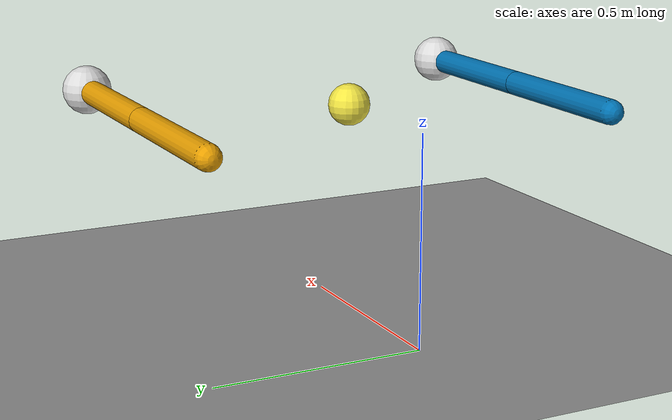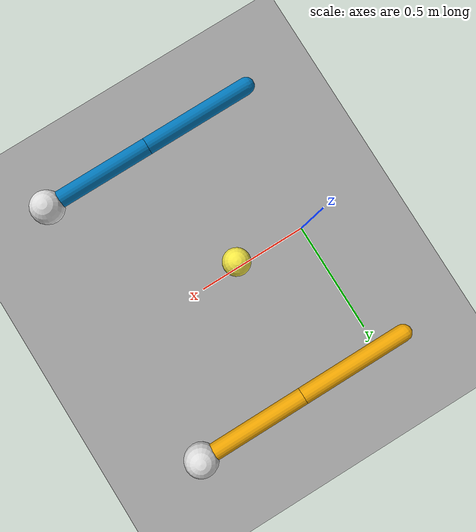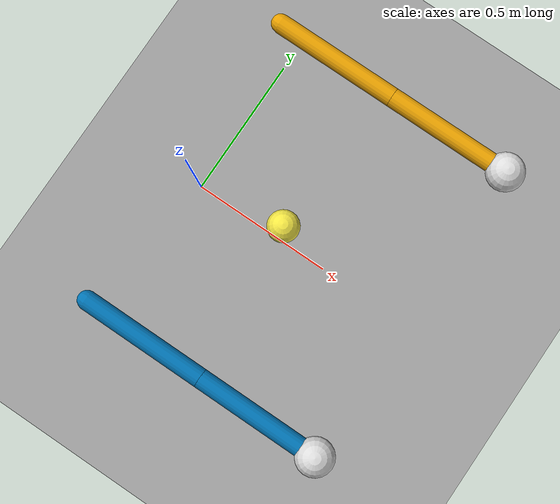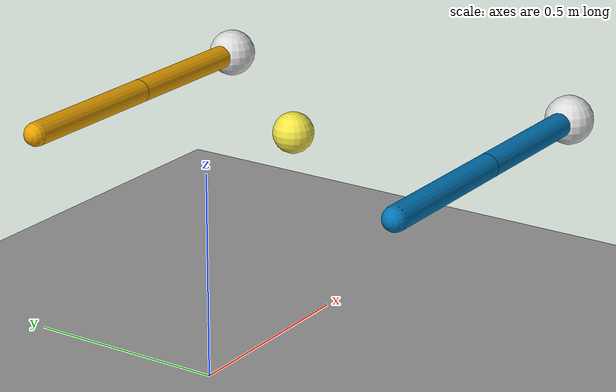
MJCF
<mujoco>
  <option gravity="0 0 -9.81"/>
  <worldbody>
    <light pos="0 0 3" dir="0 0 -1"/>
    <geom name="floor" type="plane" size="2 2 0.1" rgba="0.61 0.61 0.61 1"/>

    <!-- 小球(mocap: 位置可被代码改) -->
    <body name="ball" mocap="true" pos="0.35 0 0.5">
      <geom name="ball_geom" type="sphere" size="0.05" rgba="0.94 0.89 0.26 1"/>
    </body>

    <!-- 视觉传感器(相机盒 + 镜头, 初始隐藏; 挂载 camera_detect 后显示) -->
    <body name="vision_sensor" pos="0.72 0 0.8">
      <geom name="vision_body_geom" type="box" size="0.06 0.04 0.04" rgba="0.25 0.25 0.3 0"/>
      <geom name="vision_lens_geom" type="cylinder" size="0.02 0.025" fromto="0.06 0 0 -0.06 0 0" rgba="0.05 0.05 0.1 0"/>
    </body>

    <!-- 机械臂 A(红色系) -->
    <body name="A_link1" pos="0 -0.5 0.5">
      <joint name="A_joint1" type="hinge" axis="0 0 1"/>
      <geom name="A_link1_geom" type="capsule" size="0.03" fromto="0 0 0 0.4 0 0" rgba="0.00 0.45 0.70 1"/>
      <body name="A_link2" pos="0.4 0 0">
        <joint name="A_joint2" type="hinge" axis="0 0 1"/>
        <geom name="A_link2_geom" type="capsule" size="0.03" fromto="0 0 0 0.4 0 0" rgba="0.00 0.45 0.70 1"/>
        <site name="A_ee" pos="0.4 0 0"/>
        <geom name="A_tool" type="sphere" size="0.06" pos="0.4 0 0" rgba="0.85 0.85 0.85 1"/>
      </body>
    </body>

    <!-- 机械臂 B(蓝色系) -->
    <body name="B_link1" pos="0 0.5 0.5">
      <joint name="B_joint1" type="hinge" axis="0 0 1"/>
      <geom name="B_link1_geom" type="capsule" size="0.03" fromto="0 0 0 0.4 0 0" rgba="0.90 0.62 0.00 1"/>
      <body name="B_link2" pos="0.4 0 0">
        <joint name="B_joint2" type="hinge" axis="0 0 1"/>
        <geom name="B_link2_geom" type="capsule" size="0.03" fromto="0 0 0 0.4 0 0" rgba="0.90 0.62 0.00 1"/>
        <site name="B_ee" pos="0.4 0 0"/>
        <geom name="B_tool" type="sphere" size="0.06" pos="0.4 0 0" rgba="0.85 0.85 0.85 1"/>
      </body>
    </body>
  </worldbody>
</mujoco>
